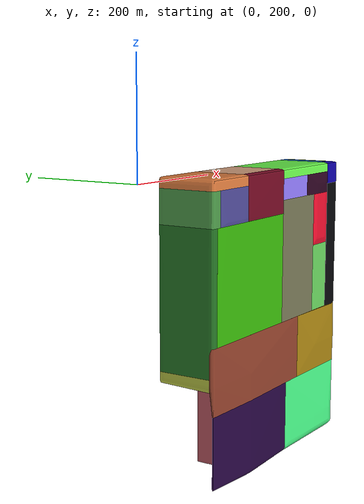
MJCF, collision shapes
<?xml version="1.0" encoding="UTF-8"?>
<mujoco model="ShipScene">
<default>
<default class="visual">
<geom group="2" type="mesh" contype="0" conaffinity="0"/>
</default>
<default class="collision">
<geom group="3" type="mesh"/>
</default>
</default>
<asset>
<material name="Box_Material" specular="0.5" shininess="0.2" rgba="0.905660 0.276824 0.276824 1.000000"/>
<texture type="2d" name="device1_basecolor" file="device1_basecolor.png"/>
<material name="Device1" texture="device1_basecolor" specular="0.5" shininess="0.2"/>
<texture type="2d" name="device4_basecolor" file="device4_basecolor.png"/>
<material name="Device4" texture="device4_basecolor" specular="0.5" shininess="0.2"/>
<texture type="2d" name="engine_basecolor" file="engine_basecolor.png"/>
<material name="Engine" texture="engine_basecolor" specular="0.5" shininess="0.2"/>
<material name="Floor1" specular="0.5" shininess="0.2" rgba="1.000000 0.939428 0.636792 1.000000"/>
<texture type="2d" name="T_Room_01_BC 1" file="T_Room_01_BC 1.png"/>
<material name="M_Room_01" texture="T_Room_01_BC 1" specular="0.5" shininess="0.2"/>
<texture type="2d" name="oxygen_basecolor" file="oxygen_basecolor.png"/>
<material name="Oxygen" texture="oxygen_basecolor" specular="0.5" shininess="0.2"/>
<material name="ShipControl" specular="0.5" shininess="0.2" rgba="0.858491 0.858491 0.858491 1.000000"/>
<material name="UpperDeck_Walls" specular="0.5" shininess="0.2" rgba="0.811321 0.811321 0.811321 1.000000"/>
<material name="dark" specular="0.5" shininess="0.2" rgba="0.120154 0.120154 0.120154 1.000000"/>
<material name="floor" specular="0.5" shininess="0.2" rgba="0.255981 0.255981 0.255981 1.000000"/>
<material name="plain" specular="0.5" shininess="0.2" rgba="1.000000 1.000000 1.000000 1.000000"/>
<mesh file="ShipScene_0.obj"/>
<mesh file="ShipScene_1.obj"/>
<mesh file="ShipScene_2.obj"/>
<mesh file="ShipScene_3.obj"/>
<mesh file="ShipScene_4.obj"/>
<mesh file="ShipScene_5.obj"/>
<mesh file="ShipScene_6.obj"/>
<mesh file="ShipScene_7.obj"/>
<mesh file="ShipScene_8.obj"/>
<mesh file="ShipScene_9.obj"/>
<mesh file="ShipScene_10.obj"/>
<mesh file="ShipScene_11.obj"/>
<mesh file="ShipScene_collision_0.obj"/>
<mesh file="ShipScene_collision_1.obj"/>
<mesh file="ShipScene_collision_2.obj"/>
<mesh file="ShipScene_collision_3.obj"/>
<mesh file="ShipScene_collision_4.obj"/>
<mesh file="ShipScene_collision_5.obj"/>
<mesh file="ShipScene_collision_6.obj"/>
<mesh file="ShipScene_collision_7.obj"/>
<mesh file="ShipScene_collision_8.obj"/>
<mesh file="ShipScene_collision_9.obj"/>
<mesh file="ShipScene_collision_10.obj"/>
<mesh file="ShipScene_collision_11.obj"/>
<mesh file="ShipScene_collision_12.obj"/>
<mesh file="ShipScene_collision_13.obj"/>
<mesh file="ShipScene_collision_14.obj"/>
<mesh file="ShipScene_collision_15.obj"/>
<mesh file="ShipScene_collision_16.obj"/>
<mesh file="ShipScene_collision_17.obj"/>
<mesh file="ShipScene_collision_18.obj"/>
<mesh file="ShipScene_collision_19.obj"/>
<mesh file="ShipScene_collision_20.obj"/>
<mesh file="ShipScene_collision_21.obj"/>
<mesh file="ShipScene_collision_22.obj"/>
<mesh file="ShipScene_collision_23.obj"/>
<mesh file="ShipScene_collision_24.obj"/>
<mesh file="ShipScene_collision_25.obj"/>
<mesh file="ShipScene_collision_26.obj"/>
<mesh file="ShipScene_collision_27.obj"/>
<mesh file="ShipScene_collision_28.obj"/>
<mesh file="ShipScene_collision_29.obj"/>
<mesh file="ShipScene_collision_30.obj"/>
<mesh file="ShipScene_collision_31.obj"/>
<mesh file="ShipScene_collision_32.obj"/>
<mesh file="ShipScene_collision_33.obj"/>
<mesh file="ShipScene_collision_34.obj"/>
<mesh file="ShipScene_collision_35.obj"/>
<mesh file="ShipScene_collision_36.obj"/>
<mesh file="ShipScene_collision_37.obj"/>
<mesh file="ShipScene_collision_38.obj"/>
<mesh file="ShipScene_collision_39.obj"/>
<mesh file="ShipScene_collision_40.obj"/>
<mesh file="ShipScene_collision_41.obj"/>
<mesh file="ShipScene_collision_42.obj"/>
<mesh file="ShipScene_collision_43.obj"/>
<mesh file="ShipScene_collision_44.obj"/>
<mesh file="ShipScene_collision_45.obj"/>
<mesh file="ShipScene_collision_46.obj"/>
<mesh file="ShipScene_collision_47.obj"/>
</asset>
<worldbody>

<!-- Closer main spotlight with boundaries in mind -->

<!-- Super bright ambient light -->

<body name="ShipScene">
<geom mesh="ShipScene_0" material="floor" class="visual"/>
<geom mesh="ShipScene_1" material="M_Room_01" class="visual"/>
<geom mesh="ShipScene_2" material="ShipControl" class="visual"/>
<geom mesh="ShipScene_3" material="dark" class="visual"/>
<geom mesh="ShipScene_4" material="plain" class="visual"/>
<geom mesh="ShipScene_5" material="Engine" class="visual"/>
<geom mesh="ShipScene_6" material="Oxygen" class="visual"/>
<geom mesh="ShipScene_7" material="Floor1" class="visual"/>
<geom mesh="ShipScene_8" material="Box_Material" class="visual"/>
<geom mesh="ShipScene_9" material="Device4" class="visual"/>
<geom mesh="ShipScene_10" material="Device1" class="visual"/>
<geom mesh="ShipScene_11" material="UpperDeck_Walls" class="visual"/>
<geom mesh="ShipScene_collision_0" rgba="0.6582234501900802 0.5130188191176454 0.06476388893231488 1" class="collision"/>
<geom mesh="ShipScene_collision_1" rgba="0.14686044117446118 0.46158242871460675 0.15026935402731578 1" class="collision"/>
<geom mesh="ShipScene_collision_2" rgba="0.5638852571294272 0.25042981567926115 0.1683729957045459 1" class="collision"/>
<geom mesh="ShipScene_collision_3" rgba="0.33947805569395606 0.9899095029301579 0.6917408150049503 1" class="collision"/>
<geom mesh="ShipScene_collision_4" rgba="0.8458600631046397 0.6683509286161998 0.7511027804335986 1" class="collision"/>
<geom mesh="ShipScene_collision_5" rgba="0.8867435487410411 0.4955884218692366 0.24900928272448486 1" class="collision"/>
<geom mesh="ShipScene_collision_6" rgba="0.10046743241018163 0.6027564112711044 0.2304683288707986 1" class="collision"/>
<geom mesh="ShipScene_collision_7" rgba="0.4238504810094018 0.9932852418280963 0.30333332785105405 1" class="collision"/>
<geom mesh="ShipScene_collision_8" rgba="0.714513712224071 0.3329315798182152 0.3724317562462408 1" class="collision"/>
<geom mesh="ShipScene_collision_9" rgba="0.150418477076242 0.02266852368091765 0.25441847097954096 1" class="collision"/>
<geom mesh="ShipScene_collision_10" rgba="0.223846131746667 0.7250063521804084 0.03844834475263903 1" class="collision"/>
<geom mesh="ShipScene_collision_11" rgba="0.599600772957523 0.9647399289945203 0.7451567407834194 1" class="collision"/>
<geom mesh="ShipScene_collision_12" rgba="0.058329118159302196 0.004517273010774425 0.6484551429875977 1" class="collision"/>
<geom mesh="ShipScene_collision_13" rgba="0.27817237798183647 0.9657203424984577 0.5269956009523108 1" class="collision"/>
<geom mesh="ShipScene_collision_14" rgba="0.4551525058492588 0.4572010492695685 0.32931007799895706 1" class="collision"/>
<geom mesh="ShipScene_collision_15" rgba="0.4572660605129347 0.038602981781091894 0.1393129614856563 1" class="collision"/>
<geom mesh="ShipScene_collision_16" rgba="0.019150337172020415 0.022278443469865405 0.03396467914836687 1" class="collision"/>
<geom mesh="ShipScene_collision_17" rgba="0.7691321953790801 0.2922360487571368 0.08391708058007519 1" class="collision"/>
<geom mesh="ShipScene_collision_18" rgba="0.30292307891604164 0.6054110917694467 0.2893601593508668 1" class="collision"/>
<geom mesh="ShipScene_collision_19" rgba="0.48299880881126533 0.6015889108836712 0.008575005713784667 1" class="collision"/>
<geom mesh="ShipScene_collision_20" rgba="0.07838866637579112 0.6734004060137161 0.6322247057235211 1" class="collision"/>
<geom mesh="ShipScene_collision_21" rgba="0.8642617537852009 0.655409223302369 0.5142186916907125 1" class="collision"/>
<geom mesh="ShipScene_collision_22" rgba="0.1732537569071736 0.01502942002531793 0.12627669804027508 1" class="collision"/>
<geom mesh="ShipScene_collision_23" rgba="0.9328638299153834 0.05461924625811332 0.18096367697392557 1" class="collision"/>
<geom mesh="ShipScene_collision_24" rgba="0.3325834876652334 0.473608728602523 0.605836242573455 1" class="collision"/>
<geom mesh="ShipScene_collision_25" rgba="0.7791719203964 0.7768317461143247 0.5891473441300611 1" class="collision"/>
<geom mesh="ShipScene_collision_26" rgba="0.9750966728085454 0.3248724911676457 0.9820680382501693 1" class="collision"/>
<geom mesh="ShipScene_collision_27" rgba="0.5830162005543819 0.824900864878665 0.23558506633796938 1" class="collision"/>
<geom mesh="ShipScene_collision_28" rgba="0.08736773717712287 0.423375345008452 0.8356648218726784 1" class="collision"/>
<geom mesh="ShipScene_collision_29" rgba="0.17357799638397664 0.5828213851428843 0.127603585938593 1" class="collision"/>
<geom mesh="ShipScene_collision_30" rgba="0.566217920125141 0.47890001135661886 0.984278484753354 1" class="collision"/>
<geom mesh="ShipScene_collision_31" rgba="0.40273045427335397 0.8163210728172922 0.3654611522406507 1" class="collision"/>
<geom mesh="ShipScene_collision_32" rgba="0.0586825316176266 0.15879273804363014 0.7484591360398961 1" class="collision"/>
<geom mesh="ShipScene_collision_33" rgba="0.719528289252114 0.7660488845104021 0.26073960535553575 1" class="collision"/>
<geom mesh="ShipScene_collision_34" rgba="0.22842517279801933 0.21705638972848207 0.5020921260637359 1" class="collision"/>
<geom mesh="ShipScene_collision_35" rgba="0.37351238692924793 0.745809330961279 0.6075819213351096 1" class="collision"/>
<geom mesh="ShipScene_collision_36" rgba="0.62646275320587 0.022086400903503667 0.5978886552393191 1" class="collision"/>
<geom mesh="ShipScene_collision_37" rgba="0.3047147154226484 0.2880319024471101 0.5916033476198295 1" class="collision"/>
<geom mesh="ShipScene_collision_38" rgba="0.6920768918074602 0.4027331056846747 0.01997755373451293 1" class="collision"/>
<geom mesh="ShipScene_collision_39" rgba="0.6332257793184259 0.9655696207279809 0.6228163883209874 1" class="collision"/>
<geom mesh="ShipScene_collision_40" rgba="0.6960044372140033 0.8477945408121211 0.9308635829644594 1" class="collision"/>
<geom mesh="ShipScene_collision_41" rgba="0.6792476369150441 0.3141803667175007 0.10170686106816151 1" class="collision"/>
<geom mesh="ShipScene_collision_42" rgba="0.7598173517609158 0.9038174545302073 0.954775910204729 1" class="collision"/>
<geom mesh="ShipScene_collision_43" rgba="0.4595783048879172 0.19789861570432088 0.5937897422759709 1" class="collision"/>
<geom mesh="ShipScene_collision_44" rgba="0.13399777226327447 0.030096513808423264 0.13889126887191616 1" class="collision"/>
<geom mesh="ShipScene_collision_45" rgba="0.33018333539808165 0.6678513941262147 0.6404754588991243 1" class="collision"/>
<geom mesh="ShipScene_collision_46" rgba="0.05209185641224001 0.9616908154094029 0.23041577701707472 1" class="collision"/>
<geom mesh="ShipScene_collision_47" rgba="0.6019759791214018 0.6505323245339096 0.5127420841212887 1" class="collision"/>
</body>
</worldbody>
</mujoco>
